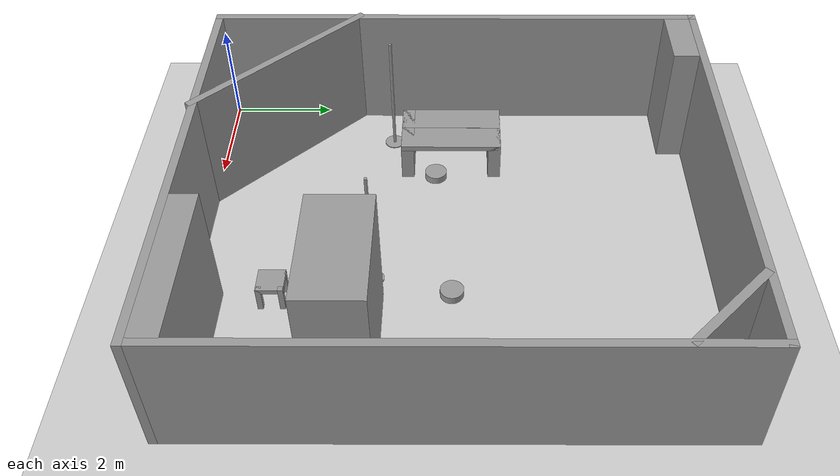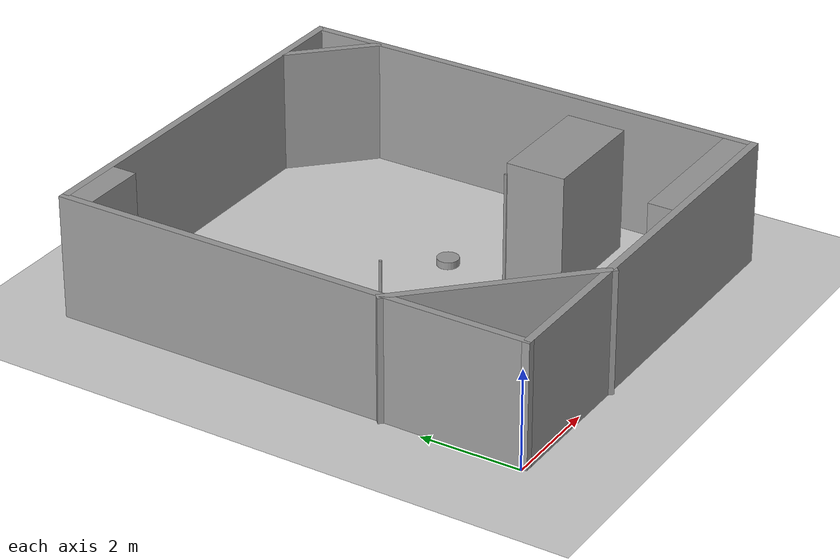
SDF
<sdf version="1.6">
 <world name="default">
  <model name="ground_plane">
   <pose>6.5 0 0 0 -0 0</pose>
   <static>1</static>
   <link name="link">
    <collision name="collision">
     <geometry><plane><normal>0 0 1</normal><size>100 100</size></plane></geometry>
     <surface>
      <contact><collide_bitmask>65535</collide_bitmask></contact>
      <friction><ode><mu>100</mu><mu2>50</mu2></ode></friction>
     </surface>
    </collision>
    <visual name="visual">
     <cast_shadows>0</cast_shadows>
     <geometry><plane><normal>0 0 1</normal><size>100 100</size></plane></geometry>
     <material>
      <script><uri>file://media/materials/scripts/gazebo.material</uri><name>Gazebo/Grey</name></script>
     </material>
    </visual>
   </link>
  </model>
  <model name="Table_SF">
   <link name="link_0">
    <inertial>
     <mass>1</mass>
     <inertia>
      <ixx>0.166667</ixx>
      <ixy>0</ixy>
      <ixz>0</ixz>
      <iyy>0.166667</iyy>
      <iyz>0</iyz>
      <izz>0.166667</izz>
     </inertia>
    </inertial>
    <pose>0 -0.875 -0.116667 0 -0 0</pose>
    <visual name="visual">
     <geometry><box><size>0.6 0.25 0.8</size></box></geometry>
     <material>
      <lighting>1</lighting>
      <script><uri>file://media/materials/scripts/gazebo.material</uri><name>Gazebo/Grey</name></script>
      <shader type="pixel"><normal_map>__default__</normal_map></shader>
      <ambient>0.3 0.3 0.3 1</ambient>
      <diffuse>0.7 0.7 0.7 1</diffuse>
      <specular>0.01 0.01 0.01 1</specular>
      <emissive>0 0 0 1</emissive>
     </material>
    </visual>
    <collision name="collision">
     <geometry><box><size>0.6 0.25 0.8</size></box></geometry>
     <surface>
      <friction>
       <ode><mu>1</mu><mu2>1</mu2><fdir1>0 0 0</fdir1><slip1>0</slip1><slip2>0</slip2></ode>
       <torsional>
        <coefficient>1</coefficient>
        <patch_radius>0</patch_radius>
        <surface_radius>0</surface_radius>
        <use_patch_radius>1</use_patch_radius>
        <ode><slip>0</slip></ode>
       </torsional>
      </friction>
      <bounce><restitution_coefficient>0</restitution_coefficient><threshold>1e+06</threshold></bounce>
      <contact>
       <collide_without_contact>0</collide_without_contact>
       <collide_without_contact_bitmask>1</collide_without_contact_bitmask>
       <collide_bitmask>1</collide_bitmask>
       <ode>
        <soft_cfm>0</soft_cfm>
        <soft_erp>0.2</soft_erp>
        <kp>1e+13</kp>
        <kd>1</kd>
        <max_vel>0.01</max_vel>
        <min_depth>0</min_depth>
       </ode>
       <bullet>
        <split_impulse>1</split_impulse>
        <split_impulse_penetration_threshold>-0.01</split_impulse_penetration_threshold>
        <soft_cfm>0</soft_cfm>
        <soft_erp>0.2</soft_erp>
        <kp>1e+13</kp>
        <kd>1</kd>
       </bullet>
      </contact>
     </surface>
    </collision>
   </link>
   <link name="link_0_clone">
    <inertial>
     <mass>1</mass>
     <inertia>
      <ixx>0.166667</ixx>
      <ixy>0</ixy>
      <ixz>0</ixz>
      <iyy>0.166667</iyy>
      <iyz>0</iyz>
      <izz>0.166667</izz>
     </inertia>
    </inertial>
    <pose>0 0.875 -0.116667 0 -0 0</pose>
    <visual name="visual">
     <geometry><box><size>0.6 0.25 0.8</size></box></geometry>
     <material>
      <lighting>1</lighting>
      <script><uri>file://media/materials/scripts/gazebo.material</uri><name>Gazebo/Grey</name></script>
      <shader type="pixel"><normal_map>__default__</normal_map></shader>
      <ambient>0.3 0.3 0.3 1</ambient>
      <diffuse>0.7 0.7 0.7 1</diffuse>
      <specular>0.01 0.01 0.01 1</specular>
      <emissive>0 0 0 1</emissive>
     </material>
    </visual>
    <collision name="collision">
     <geometry><box><size>0.6 0.25 0.8</size></box></geometry>
     <surface>
      <friction>
       <ode><mu>1</mu><mu2>1</mu2><fdir1>0 0 0</fdir1><slip1>0</slip1><slip2>0</slip2></ode>
       <torsional>
        <coefficient>1</coefficient>
        <patch_radius>0</patch_radius>
        <surface_radius>0</surface_radius>
        <use_patch_radius>1</use_patch_radius>
        <ode><slip>0</slip></ode>
       </torsional>
      </friction>
      <bounce><restitution_coefficient>0</restitution_coefficient><threshold>1e+06</threshold></bounce>
      <contact>
       <collide_without_contact>0</collide_without_contact>
       <collide_without_contact_bitmask>1</collide_without_contact_bitmask>
       <collide_bitmask>1</collide_bitmask>
       <ode>
        <soft_cfm>0</soft_cfm>
        <soft_erp>0.2</soft_erp>
        <kp>1e+13</kp>
        <kd>1</kd>
        <max_vel>0.01</max_vel>
        <min_depth>0</min_depth>
       </ode>
       <bullet>
        <split_impulse>1</split_impulse>
        <split_impulse_penetration_threshold>-0.01</split_impulse_penetration_threshold>
        <soft_cfm>0</soft_cfm>
        <soft_erp>0.2</soft_erp>
        <kp>1e+13</kp>
        <kd>1</kd>
       </bullet>
      </contact>
     </surface>
    </collision>
   </link>
   <link name="link_1">
    <inertial>
     <mass>1</mass>
     <inertia>
      <ixx>0.166667</ixx>
      <ixy>0</ixy>
      <ixz>0</ixz>
      <iyy>0.166667</iyy>
      <iyz>0</iyz>
      <izz>0.166667</izz>
     </inertia>
    </inertial>
    <pose>0 0 0.233333 0 -0 0</pose>
    <visual name="visual">
     <geometry><box><size>0.6 2 0.1</size></box></geometry>
     <material>
      <lighting>1</lighting>
      <script><uri>file://media/materials/scripts/gazebo.material</uri><name>Gazebo/Grey</name></script>
      <shader type="pixel"><normal_map>__default__</normal_map></shader>
      <ambient>0.3 0.3 0.3 1</ambient>
      <diffuse>0.7 0.7 0.7 1</diffuse>
      <specular>0.01 0.01 0.01 1</specular>
      <emissive>0 0 0 1</emissive>
     </material>
    </visual>
    <collision name="collision">
     <geometry><box><size>0.6 2 0.1</size></box></geometry>
     <surface>
      <friction>
       <ode><mu>1</mu><mu2>1</mu2><fdir1>0 0 0</fdir1><slip1>0</slip1><slip2>0</slip2></ode>
       <torsional>
        <coefficient>1</coefficient>
        <patch_radius>0</patch_radius>
        <surface_radius>0</surface_radius>
        <use_patch_radius>1</use_patch_radius>
        <ode><slip>0</slip></ode>
       </torsional>
      </friction>
      <bounce><restitution_coefficient>0</restitution_coefficient><threshold>1e+06</threshold></bounce>
      <contact>
       <collide_without_contact>0</collide_without_contact>
       <collide_without_contact_bitmask>1</collide_without_contact_bitmask>
       <collide_bitmask>1</collide_bitmask>
       <ode>
        <soft_cfm>0</soft_cfm>
        <soft_erp>0.2</soft_erp>
        <kp>1e+13</kp>
        <kd>1</kd>
        <max_vel>0.01</max_vel>
        <min_depth>0</min_depth>
       </ode>
       <bullet>
        <split_impulse>1</split_impulse>
        <split_impulse_penetration_threshold>-0.01</split_impulse_penetration_threshold>
        <soft_cfm>0</soft_cfm>
        <soft_erp>0.2</soft_erp>
        <kp>1e+13</kp>
        <kd>1</kd>
       </bullet>
      </contact>
     </surface>
    </collision>
   </link>
   <joint name="link_0_JOINT_0" type="fixed">
    <parent>link_0</parent>
    <child>link_1</child>
    <physics>
     <ode><limit><cfm>0</cfm><erp>0.2</erp></limit><suspension><cfm>0</cfm><erp>0.2</erp></suspension></ode>
    </physics>
   </joint>
   <joint name="link_0_clone_JOINT_1" type="fixed">
    <parent>link_0_clone</parent>
    <child>link_1</child>
    <physics>
     <ode><limit><cfm>0</cfm><erp>0.2</erp></limit><suspension><cfm>0</cfm><erp>0.2</erp></suspension></ode>
    </physics>
   </joint>
   <static>0</static>
   <pose>1.29995 4.69731 0.516667 0 0 -3e-06</pose>
  </model>
  <model name="Factory_room">
   <pose>4.25 4.75 0 0 -0 0</pose>
   <link name="Wall_2">
    <collision name="Wall_2_Collision">
     <geometry><box><size>8.5 0.15 2.5</size></box></geometry>
     <pose>0 0 1.25 0 -0 0</pose>
    </collision>
    <visual name="Wall_2_Visual">
     <pose>0 0 1.25 0 -0 0</pose>
     <geometry><box><size>8.5 0.15 2.5</size></box></geometry>
     <material>
      <script><uri>file://media/materials/scripts/gazebo.material</uri><name>Gazebo/Grey</name></script>
      <ambient>1 1 1 1</ambient>
     </material>
     <meta><layer>0</layer></meta>
    </visual>
    <pose>0.038385 4.83866 0 0 -0 0</pose>
   </link>
   <link name="Wall_22">
    <collision name="Wall_22_Collision">
     <geometry><box><size>4.25 0.15 2.5</size></box></geometry>
     <pose>0 0 1.25 0 -0 0</pose>
    </collision>
    <visual name="Wall_22_Visual">
     <pose>0 0 1.25 0 -0 0</pose>
     <geometry><box><size>4.25 0.15 2.5</size></box></geometry>
     <material>
      <script><uri>file://media/materials/scripts/gazebo.material</uri><name>Gazebo/Grey</name></script>
      <ambient>1 1 1 1</ambient>
     </material>
     <meta><layer>0</layer></meta>
    </visual>
    <pose>-2.73275 -3.35803 0 0 -0 -0.785398</pose>
   </link>
   <link name="Wall_24">
    <collision name="Wall_24_Collision">
     <geometry><box><size>3 0.5 2.5</size></box></geometry>
     <pose>0 0 1.25 0 -0 0</pose>
    </collision>
    <visual name="Wall_24_Visual">
     <pose>0 0 1.25 0 -0 0</pose>
     <geometry><box><size>3 0.5 2.5</size></box></geometry>
     <material>
      <script><uri>file://media/materials/scripts/gazebo.material</uri><name>Gazebo/Grey</name></script>
      <ambient>1 1 1 1</ambient>
     </material>
     <meta><layer>0</layer></meta>
    </visual>
    <pose>2.64353 -4.43684 0 0 -0 0</pose>
   </link>
   <link name="Wall_26">
    <collision name="Wall_26_Collision">
     <geometry><box><size>2.3 1.2 2.5</size></box></geometry>
     <pose>0 0 1.25 0 -0 0</pose>
    </collision>
    <visual name="Wall_26_Visual">
     <pose>0 0 1.25 0 -0 0</pose>
     <geometry><box><size>2.3 1.2 2.5</size></box></geometry>
     <material>
      <script><uri>file://media/materials/scripts/gazebo.material</uri><name>Gazebo/Grey</name></script>
      <ambient>1 1 1 1</ambient>
     </material>
     <meta><layer>0</layer></meta>
    </visual>
    <pose>2.29544 -1.86664 0 0 -0 3.14159</pose>
   </link>
   <link name="Wall_3">
    <collision name="Wall_3_Collision">
     <geometry><box><size>9.75 0.15 2.5</size></box></geometry>
     <pose>0 0 1.25 0 -0 0</pose>
    </collision>
    <visual name="Wall_3_Visual">
     <pose>0 0 1.25 0 -0 0</pose>
     <geometry><box><size>9.75 0.15 2.5</size></box></geometry>
     <material>
      <script><uri>file://media/materials/scripts/gazebo.material</uri><name>Gazebo/Grey</name></script>
      <ambient>1 1 1 1</ambient>
     </material>
     <meta><layer>0</layer></meta>
    </visual>
    <pose>4.21338 0.038663 0 0 -0 -1.5708</pose>
   </link>
   <link name="Wall_4">
    <collision name="Wall_4_Collision">
     <geometry><box><size>8.5 0.15 2.5</size></box></geometry>
     <pose>0 0 1.25 0 -0 0</pose>
    </collision>
    <visual name="Wall_4_Visual">
     <pose>0 0 1.25 0 -0 0</pose>
     <geometry><box><size>8.5 0.15 2.5</size></box></geometry>
     <material>
      <script><uri>file://media/materials/scripts/gazebo.material</uri><name>Gazebo/Grey</name></script>
      <ambient>1 1 1 1</ambient>
     </material>
     <meta><layer>0</layer></meta>
    </visual>
    <pose>0.038385 -4.76134 0 0 -0 3.14159</pose>
   </link>
   <link name="Wall_5">
    <collision name="Wall_5_Collision">
     <geometry><box><size>9.75 0.15 2.5</size></box></geometry>
     <pose>0 0 1.25 0 -0 0</pose>
    </collision>
    <visual name="Wall_5_Visual">
     <pose>0 0 1.25 0 -0 0</pose>
     <geometry><box><size>9.75 0.15 2.5</size></box></geometry>
     <material>
      <script><uri>file://media/materials/scripts/gazebo.material</uri><name>Gazebo/Grey</name></script>
      <ambient>1 1 1 1</ambient>
     </material>
     <meta><layer>0</layer></meta>
    </visual>
    <pose>-4.13661 0.038663 0 0 -0 1.5708</pose>
   </link>
   <link name="Wall_7">
    <collision name="Wall_7_Collision">
     <geometry><box><size>1.3 0.5 2.5</size></box></geometry>
     <pose>0 0 1.25 0 -0 0</pose>
    </collision>
    <visual name="Wall_7_Visual">
     <pose>0 0 1.25 0 -0 0</pose>
     <geometry><box><size>1.3 0.5 2.5</size></box></geometry>
     <material>
      <script><uri>file://media/materials/scripts/gazebo.material</uri><name>Gazebo/Grey</name></script>
      <ambient>1 1 1 1</ambient>
     </material>
     <meta><layer>0</layer></meta>
    </visual>
    <pose>-3.4172 4.51675 0 0 -0 3.14159</pose>
   </link>
   <link name="Wall_9">
    <collision name="Wall_9_Collision">
     <geometry><box><size>2 0.15 2.5</size></box></geometry>
     <pose>0 0 1.25 0 -0 0</pose>
    </collision>
    <visual name="Wall_9_Visual">
     <pose>0 0 1.25 0 -0 0</pose>
     <geometry><box><size>2 0.15 2.5</size></box></geometry>
     <material>
      <script><uri>file://media/materials/scripts/gazebo.material</uri><name>Gazebo/Grey</name></script>
      <ambient>1 1 1 1</ambient>
     </material>
     <meta><layer>0</layer></meta>
    </visual>
    <pose>3.51931 4.12517 0 0 -0 2.35619</pose>
   </link>
   <static>1</static>
  </model>
  <model name="Table_SF_clone">
   <link name="link_0">
    <inertial>
     <mass>1</mass>
     <inertia>
      <ixx>0.166667</ixx>
      <ixy>0</ixy>
      <ixz>0</ixz>
      <iyy>0.166667</iyy>
      <iyz>0</iyz>
      <izz>0.166667</izz>
     </inertia>
    </inertial>
    <pose>0 -0.875 -0.116667 0 -0 0</pose>
    <visual name="visual">
     <geometry><box><size>0.6 0.25 0.8</size></box></geometry>
     <material>
      <lighting>1</lighting>
      <script><uri>file://media/materials/scripts/gazebo.material</uri><name>Gazebo/Grey</name></script>
      <shader type="pixel"><normal_map>__default__</normal_map></shader>
      <ambient>0.3 0.3 0.3 1</ambient>
      <diffuse>0.7 0.7 0.7 1</diffuse>
      <specular>0.01 0.01 0.01 1</specular>
      <emissive>0 0 0 1</emissive>
     </material>
    </visual>
    <collision name="collision">
     <geometry><box><size>0.6 0.25 0.8</size></box></geometry>
     <surface>
      <friction>
       <ode><mu>1</mu><mu2>1</mu2><fdir1>0 0 0</fdir1><slip1>0</slip1><slip2>0</slip2></ode>
       <torsional>
        <coefficient>1</coefficient>
        <patch_radius>0</patch_radius>
        <surface_radius>0</surface_radius>
        <use_patch_radius>1</use_patch_radius>
        <ode><slip>0</slip></ode>
       </torsional>
      </friction>
      <bounce><restitution_coefficient>0</restitution_coefficient><threshold>1e+06</threshold></bounce>
      <contact>
       <collide_without_contact>0</collide_without_contact>
       <collide_without_contact_bitmask>1</collide_without_contact_bitmask>
       <collide_bitmask>1</collide_bitmask>
       <ode>
        <soft_cfm>0</soft_cfm>
        <soft_erp>0.2</soft_erp>
        <kp>1e+13</kp>
        <kd>1</kd>
        <max_vel>0.01</max_vel>
        <min_depth>0</min_depth>
       </ode>
       <bullet>
        <split_impulse>1</split_impulse>
        <split_impulse_penetration_threshold>-0.01</split_impulse_penetration_threshold>
        <soft_cfm>0</soft_cfm>
        <soft_erp>0.2</soft_erp>
        <kp>1e+13</kp>
        <kd>1</kd>
       </bullet>
      </contact>
     </surface>
    </collision>
   </link>
   <link name="link_0_clone">
    <inertial>
     <mass>1</mass>
     <inertia>
      <ixx>0.166667</ixx>
      <ixy>0</ixy>
      <ixz>0</ixz>
      <iyy>0.166667</iyy>
      <iyz>0</iyz>
      <izz>0.166667</izz>
     </inertia>
    </inertial>
    <pose>0 0.875 -0.116667 0 -0 0</pose>
    <visual name="visual">
     <geometry><box><size>0.6 0.25 0.8</size></box></geometry>
     <material>
      <lighting>1</lighting>
      <script><uri>file://media/materials/scripts/gazebo.material</uri><name>Gazebo/Grey</name></script>
      <shader type="pixel"><normal_map>__default__</normal_map></shader>
      <ambient>0.3 0.3 0.3 1</ambient>
      <diffuse>0.7 0.7 0.7 1</diffuse>
      <specular>0.01 0.01 0.01 1</specular>
      <emissive>0 0 0 1</emissive>
     </material>
    </visual>
    <collision name="collision">
     <geometry><box><size>0.6 0.25 0.8</size></box></geometry>
     <surface>
      <friction>
       <ode><mu>1</mu><mu2>1</mu2><fdir1>0 0 0</fdir1><slip1>0</slip1><slip2>0</slip2></ode>
       <torsional>
        <coefficient>1</coefficient>
        <patch_radius>0</patch_radius>
        <surface_radius>0</surface_radius>
        <use_patch_radius>1</use_patch_radius>
        <ode><slip>0</slip></ode>
       </torsional>
      </friction>
      <bounce><restitution_coefficient>0</restitution_coefficient><threshold>1e+06</threshold></bounce>
      <contact>
       <collide_without_contact>0</collide_without_contact>
       <collide_without_contact_bitmask>1</collide_without_contact_bitmask>
       <collide_bitmask>1</collide_bitmask>
       <ode>
        <soft_cfm>0</soft_cfm>
        <soft_erp>0.2</soft_erp>
        <kp>1e+13</kp>
        <kd>1</kd>
        <max_vel>0.01</max_vel>
        <min_depth>0</min_depth>
       </ode>
       <bullet>
        <split_impulse>1</split_impulse>
        <split_impulse_penetration_threshold>-0.01</split_impulse_penetration_threshold>
        <soft_cfm>0</soft_cfm>
        <soft_erp>0.2</soft_erp>
        <kp>1e+13</kp>
        <kd>1</kd>
       </bullet>
      </contact>
     </surface>
    </collision>
   </link>
   <link name="link_1">
    <inertial>
     <mass>1</mass>
     <inertia>
      <ixx>0.166667</ixx>
      <ixy>0</ixy>
      <ixz>0</ixz>
      <iyy>0.166667</iyy>
      <iyz>0</iyz>
      <izz>0.166667</izz>
     </inertia>
    </inertial>
    <pose>0 0 0.233333 0 -0 0</pose>
    <visual name="visual">
     <geometry><box><size>0.6 2 0.1</size></box></geometry>
     <material>
      <lighting>1</lighting>
      <script><uri>file://media/materials/scripts/gazebo.material</uri><name>Gazebo/Grey</name></script>
      <shader type="pixel"><normal_map>__default__</normal_map></shader>
      <ambient>0.3 0.3 0.3 1</ambient>
      <diffuse>0.7 0.7 0.7 1</diffuse>
      <specular>0.01 0.01 0.01 1</specular>
      <emissive>0 0 0 1</emissive>
     </material>
    </visual>
    <collision name="collision">
     <geometry><box><size>0.6 2 0.1</size></box></geometry>
     <surface>
      <friction>
       <ode><mu>1</mu><mu2>1</mu2><fdir1>0 0 0</fdir1><slip1>0</slip1><slip2>0</slip2></ode>
       <torsional>
        <coefficient>1</coefficient>
        <patch_radius>0</patch_radius>
        <surface_radius>0</surface_radius>
        <use_patch_radius>1</use_patch_radius>
        <ode><slip>0</slip></ode>
       </torsional>
      </friction>
      <bounce><restitution_coefficient>0</restitution_coefficient><threshold>1e+06</threshold></bounce>
      <contact>
       <collide_without_contact>0</collide_without_contact>
       <collide_without_contact_bitmask>1</collide_without_contact_bitmask>
       <collide_bitmask>1</collide_bitmask>
       <ode>
        <soft_cfm>0</soft_cfm>
        <soft_erp>0.2</soft_erp>
        <kp>1e+13</kp>
        <kd>1</kd>
        <max_vel>0.01</max_vel>
        <min_depth>0</min_depth>
       </ode>
       <bullet>
        <split_impulse>1</split_impulse>
        <split_impulse_penetration_threshold>-0.01</split_impulse_penetration_threshold>
        <soft_cfm>0</soft_cfm>
        <soft_erp>0.2</soft_erp>
        <kp>1e+13</kp>
        <kd>1</kd>
       </bullet>
      </contact>
     </surface>
    </collision>
   </link>
   <joint name="link_0_JOINT_0" type="fixed">
    <parent>link_0</parent>
    <child>link_1</child>
    <physics>
     <ode><limit><cfm>0</cfm><erp>0.2</erp></limit><suspension><cfm>0</cfm><erp>0.2</erp></suspension></ode>
    </physics>
   </joint>
   <joint name="link_0_clone_JOINT_1" type="fixed">
    <parent>link_0_clone</parent>
    <child>link_1</child>
    <physics>
     <ode><limit><cfm>0</cfm><erp>0.2</erp></limit><suspension><cfm>0</cfm><erp>0.2</erp></suspension></ode>
    </physics>
   </joint>
   <static>0</static>
   <pose>1.90049 4.69695 0.516672 5e-06 -0 -0.000542</pose>
  </model>
  <model name="little_table_SF">
   <link name="link_0">
    <inertial>
     <mass>1</mass>
     <inertia>
      <ixx>0.166667</ixx>
      <ixy>0</ixy>
      <ixz>0</ixz>
      <iyy>0.166667</iyy>
      <iyz>0</iyz>
      <izz>0.166667</izz>
     </inertia>
    </inertial>
    <pose>-0.2 -0.2 -0.04 0 -0 0</pose>
    <visual name="visual">
     <geometry><box><size>0.1 0.1 0.5</size></box></geometry>
     <material>
      <lighting>1</lighting>
      <script><uri>file://media/materials/scripts/gazebo.material</uri><name>Gazebo/Grey</name></script>
      <shader type="pixel"><normal_map>__default__</normal_map></shader>
      <ambient>0.3 0.3 0.3 1</ambient>
      <diffuse>0.7 0.7 0.7 1</diffuse>
      <specular>0.01 0.01 0.01 1</specular>
      <emissive>0 0 0 1</emissive>
     </material>
    </visual>
    <collision name="collision">
     <geometry><box><size>0.1 0.1 0.5</size></box></geometry>
     <surface>
      <friction>
       <ode><mu>1</mu><mu2>1</mu2><fdir1>0 0 0</fdir1><slip1>0</slip1><slip2>0</slip2></ode>
       <torsional>
        <coefficient>1</coefficient>
        <patch_radius>0</patch_radius>
        <surface_radius>0</surface_radius>
        <use_patch_radius>1</use_patch_radius>
        <ode><slip>0</slip></ode>
       </torsional>
      </friction>
      <bounce><restitution_coefficient>0</restitution_coefficient><threshold>1e+06</threshold></bounce>
      <contact>
       <collide_without_contact>0</collide_without_contact>
       <collide_without_contact_bitmask>1</collide_without_contact_bitmask>
       <collide_bitmask>1</collide_bitmask>
       <ode>
        <soft_cfm>0</soft_cfm>
        <soft_erp>0.2</soft_erp>
        <kp>1e+13</kp>
        <kd>1</kd>
        <max_vel>0.01</max_vel>
        <min_depth>0</min_depth>
       </ode>
       <bullet>
        <split_impulse>1</split_impulse>
        <split_impulse_penetration_threshold>-0.01</split_impulse_penetration_threshold>
        <soft_cfm>0</soft_cfm>
        <soft_erp>0.2</soft_erp>
        <kp>1e+13</kp>
        <kd>1</kd>
       </bullet>
      </contact>
     </surface>
    </collision>
   </link>
   <link name="link_0_clone">
    <inertial>
     <mass>1</mass>
     <inertia>
      <ixx>0.166667</ixx>
      <ixy>0</ixy>
      <ixz>0</ixz>
      <iyy>0.166667</iyy>
      <iyz>0</iyz>
      <izz>0.166667</izz>
     </inertia>
    </inertial>
    <pose>0.2 -0.2 -0.04 0 -0 0</pose>
    <visual name="visual">
     <geometry><box><size>0.1 0.1 0.5</size></box></geometry>
     <material>
      <lighting>1</lighting>
      <script><uri>file://media/materials/scripts/gazebo.material</uri><name>Gazebo/Grey</name></script>
      <shader type="pixel"><normal_map>__default__</normal_map></shader>
      <ambient>0.3 0.3 0.3 1</ambient>
      <diffuse>0.7 0.7 0.7 1</diffuse>
      <specular>0.01 0.01 0.01 1</specular>
      <emissive>0 0 0 1</emissive>
     </material>
    </visual>
    <collision name="collision">
     <geometry><box><size>0.1 0.1 0.5</size></box></geometry>
     <surface>
      <friction>
       <ode><mu>1</mu><mu2>1</mu2><fdir1>0 0 0</fdir1><slip1>0</slip1><slip2>0</slip2></ode>
       <torsional>
        <coefficient>1</coefficient>
        <patch_radius>0</patch_radius>
        <surface_radius>0</surface_radius>
        <use_patch_radius>1</use_patch_radius>
        <ode><slip>0</slip></ode>
       </torsional>
      </friction>
      <bounce><restitution_coefficient>0</restitution_coefficient><threshold>1e+06</threshold></bounce>
      <contact>
       <collide_without_contact>0</collide_without_contact>
       <collide_without_contact_bitmask>1</collide_without_contact_bitmask>
       <collide_bitmask>1</collide_bitmask>
       <ode>
        <soft_cfm>0</soft_cfm>
        <soft_erp>0.2</soft_erp>
        <kp>1e+13</kp>
        <kd>1</kd>
        <max_vel>0.01</max_vel>
        <min_depth>0</min_depth>
       </ode>
       <bullet>
        <split_impulse>1</split_impulse>
        <split_impulse_penetration_threshold>-0.01</split_impulse_penetration_threshold>
        <soft_cfm>0</soft_cfm>
        <soft_erp>0.2</soft_erp>
        <kp>1e+13</kp>
        <kd>1</kd>
       </bullet>
      </contact>
     </surface>
    </collision>
   </link>
   <link name="link_0_clone_0">
    <inertial>
     <mass>1</mass>
     <inertia>
      <ixx>0.166667</ixx>
      <ixy>0</ixy>
      <ixz>0</ixz>
      <iyy>0.166667</iyy>
      <iyz>0</iyz>
      <izz>0.166667</izz>
     </inertia>
    </inertial>
    <pose>-0.2 0.2 -0.04 0 -0 0</pose>
    <visual name="visual">
     <geometry><box><size>0.1 0.1 0.5</size></box></geometry>
     <material>
      <lighting>1</lighting>
      <script><uri>file://media/materials/scripts/gazebo.material</uri><name>Gazebo/Grey</name></script>
      <shader type="pixel"><normal_map>__default__</normal_map></shader>
      <ambient>0.3 0.3 0.3 1</ambient>
      <diffuse>0.7 0.7 0.7 1</diffuse>
      <specular>0.01 0.01 0.01 1</specular>
      <emissive>0 0 0 1</emissive>
     </material>
    </visual>
    <collision name="collision">
     <geometry><box><size>0.1 0.1 0.5</size></box></geometry>
     <surface>
      <friction>
       <ode><mu>1</mu><mu2>1</mu2><fdir1>0 0 0</fdir1><slip1>0</slip1><slip2>0</slip2></ode>
       <torsional>
        <coefficient>1</coefficient>
        <patch_radius>0</patch_radius>
        <surface_radius>0</surface_radius>
        <use_patch_radius>1</use_patch_radius>
        <ode><slip>0</slip></ode>
       </torsional>
      </friction>
      <bounce><restitution_coefficient>0</restitution_coefficient><threshold>1e+06</threshold></bounce>
      <contact>
       <collide_without_contact>0</collide_without_contact>
       <collide_without_contact_bitmask>1</collide_without_contact_bitmask>
       <collide_bitmask>1</collide_bitmask>
       <ode>
        <soft_cfm>0</soft_cfm>
        <soft_erp>0.2</soft_erp>
        <kp>1e+13</kp>
        <kd>1</kd>
        <max_vel>0.01</max_vel>
        <min_depth>0</min_depth>
       </ode>
       <bullet>
        <split_impulse>1</split_impulse>
        <split_impulse_penetration_threshold>-0.01</split_impulse_penetration_threshold>
        <soft_cfm>0</soft_cfm>
        <soft_erp>0.2</soft_erp>
        <kp>1e+13</kp>
        <kd>1</kd>
       </bullet>
      </contact>
     </surface>
    </collision>
   </link>
   <link name="link_0_clone_1">
    <inertial>
     <mass>1</mass>
     <inertia>
      <ixx>0.166667</ixx>
      <ixy>0</ixy>
      <ixz>0</ixz>
      <iyy>0.166667</iyy>
      <iyz>0</iyz>
      <izz>0.166667</izz>
     </inertia>
    </inertial>
    <pose>0.2 0.2 -0.04 0 -0 0</pose>
    <visual name="visual">
     <geometry><box><size>0.1 0.1 0.5</size></box></geometry>
     <material>
      <lighting>1</lighting>
      <script><uri>file://media/materials/scripts/gazebo.material</uri><name>Gazebo/Grey</name></script>
      <shader type="pixel"><normal_map>__default__</normal_map></shader>
      <ambient>0.3 0.3 0.3 1</ambient>
      <diffuse>0.7 0.7 0.7 1</diffuse>
      <specular>0.01 0.01 0.01 1</specular>
      <emissive>0 0 0 1</emissive>
     </material>
    </visual>
    <collision name="collision">
     <geometry><box><size>0.1 0.1 0.5</size></box></geometry>
     <surface>
      <friction>
       <ode><mu>1</mu><mu2>1</mu2><fdir1>0 0 0</fdir1><slip1>0</slip1><slip2>0</slip2></ode>
       <torsional>
        <coefficient>1</coefficient>
        <patch_radius>0</patch_radius>
        <surface_radius>0</surface_radius>
        <use_patch_radius>1</use_patch_radius>
        <ode><slip>0</slip></ode>
       </torsional>
      </friction>
      <bounce><restitution_coefficient>0</restitution_coefficient><threshold>1e+06</threshold></bounce>
      <contact>
       <collide_without_contact>0</collide_without_contact>
       <collide_without_contact_bitmask>1</collide_without_contact_bitmask>
       <collide_bitmask>1</collide_bitmask>
       <ode>
        <soft_cfm>0</soft_cfm>
        <soft_erp>0.2</soft_erp>
        <kp>1e+13</kp>
        <kd>1</kd>
        <max_vel>0.01</max_vel>
        <min_depth>0</min_depth>
       </ode>
       <bullet>
        <split_impulse>1</split_impulse>
        <split_impulse_penetration_threshold>-0.01</split_impulse_penetration_threshold>
        <soft_cfm>0</soft_cfm>
        <soft_erp>0.2</soft_erp>
        <kp>1e+13</kp>
        <kd>1</kd>
       </bullet>
      </contact>
     </surface>
    </collision>
   </link>
   <link name="link_1">
    <inertial>
     <mass>1</mass>
     <inertia>
      <ixx>0.166667</ixx>
      <ixy>0</ixy>
      <ixz>0</ixz>
      <iyy>0.166667</iyy>
      <iyz>0</iyz>
      <izz>0.166667</izz>
     </inertia>
    </inertial>
    <pose>0 0 0.16 0 -0 0</pose>
    <visual name="visual">
     <geometry><box><size>0.5 0.5 0.1</size></box></geometry>
     <material>
      <lighting>1</lighting>
      <script><uri>file://media/materials/scripts/gazebo.material</uri><name>Gazebo/Grey</name></script>
      <shader type="pixel"><normal_map>__default__</normal_map></shader>
      <ambient>0.3 0.3 0.3 1</ambient>
      <diffuse>0.7 0.7 0.7 1</diffuse>
      <specular>0.01 0.01 0.01 1</specular>
      <emissive>0 0 0 1</emissive>
     </material>
    </visual>
    <collision name="collision">
     <geometry><box><size>0.5 0.5 0.1</size></box></geometry>
     <surface>
      <friction>
       <ode><mu>1</mu><mu2>1</mu2><fdir1>0 0 0</fdir1><slip1>0</slip1><slip2>0</slip2></ode>
       <torsional>
        <coefficient>1</coefficient>
        <patch_radius>0</patch_radius>
        <surface_radius>0</surface_radius>
        <use_patch_radius>1</use_patch_radius>
        <ode><slip>0</slip></ode>
       </torsional>
      </friction>
      <bounce><restitution_coefficient>0</restitution_coefficient><threshold>1e+06</threshold></bounce>
      <contact>
       <collide_without_contact>0</collide_without_contact>
       <collide_without_contact_bitmask>1</collide_without_contact_bitmask>
       <collide_bitmask>1</collide_bitmask>
       <ode>
        <soft_cfm>0</soft_cfm>
        <soft_erp>0.2</soft_erp>
        <kp>1e+13</kp>
        <kd>1</kd>
        <max_vel>0.01</max_vel>
        <min_depth>0</min_depth>
       </ode>
       <bullet>
        <split_impulse>1</split_impulse>
        <split_impulse_penetration_threshold>-0.01</split_impulse_penetration_threshold>
        <soft_cfm>0</soft_cfm>
        <soft_erp>0.2</soft_erp>
        <kp>1e+13</kp>
        <kd>1</kd>
       </bullet>
      </contact>
     </surface>
    </collision>
   </link>
   <joint name="link_1_JOINT_0" type="fixed">
    <parent>link_1</parent>
    <child>link_0_clone_0</child>
    <physics>
     <ode><limit><cfm>0</cfm><erp>0.2</erp></limit><suspension><cfm>0</cfm><erp>0.2</erp></suspension></ode>
    </physics>
   </joint>
   <joint name="link_1_JOINT_1" type="fixed">
    <parent>link_1</parent>
    <child>link_0</child>
    <physics>
     <ode><limit><cfm>0</cfm><erp>0.2</erp></limit><suspension><cfm>0</cfm><erp>0.2</erp></suspension></ode>
    </physics>
   </joint>
   <joint name="link_1_JOINT_2" type="fixed">
    <parent>link_1</parent>
    <child>link_0_clone_1</child>
    <physics>
     <ode><limit><cfm>0</cfm><erp>0.2</erp></limit><suspension><cfm>0</cfm><erp>0.2</erp></suspension></ode>
    </physics>
   </joint>
   <joint name="link_1_JOINT_3" type="fixed">
    <parent>link_1</parent>
    <child>link_0_clone</child>
    <physics>
     <ode><limit><cfm>0</cfm><erp>0.2</erp></limit><suspension><cfm>0</cfm><erp>0.2</erp></suspension></ode>
    </physics>
   </joint>
   <static>0</static>
   <pose>5.49895 1.49961 0.29 2e-06 2e-06 7e-06</pose>
  </model>
  <model name="Pillar_SF_clone">
   <link name="link_0">
    <inertial>
     <mass>1</mass>
     <inertia><ixx>0.145833</ixx><ixy>0</ixy><ixz>0</ixz><iyy>0.145833</iyy><iyz>0</iyz><izz>0.125</izz></inertia>
    </inertial>
    <pose>0 0 0.01 0 -0 0</pose>
    <visual name="visual">
     <geometry><cylinder><radius>0.2</radius><length>0.02</length></cylinder></geometry>
     <material>
      <lighting>1</lighting>
      <script><uri>file://media/materials/scripts/gazebo.material</uri><name>Gazebo/Grey</name></script>
      <shader type="pixel"><normal_map>__default__</normal_map></shader>
      <ambient>0.3 0.3 0.3 1</ambient>
      <diffuse>0.7 0.7 0.7 1</diffuse>
      <specular>0.01 0.01 0.01 1</specular>
      <emissive>0 0 0 1</emissive>
     </material>
    </visual>
    <collision name="collision">
     <geometry><cylinder><radius>0.2</radius><length>0.02</length></cylinder></geometry>
     <surface>
      <friction>
       <ode><mu>1</mu><mu2>1</mu2><fdir1>0 0 0</fdir1><slip1>0</slip1><slip2>0</slip2></ode>
       <torsional>
        <coefficient>1</coefficient>
        <patch_radius>0</patch_radius>
        <surface_radius>0</surface_radius>
        <use_patch_radius>1</use_patch_radius>
        <ode><slip>0</slip></ode>
       </torsional>
      </friction>
      <bounce><restitution_coefficient>0</restitution_coefficient><threshold>1e+06</threshold></bounce>
      <contact>
       <collide_without_contact>0</collide_without_contact>
       <collide_without_contact_bitmask>1</collide_without_contact_bitmask>
       <collide_bitmask>1</collide_bitmask>
       <ode>
        <soft_cfm>0</soft_cfm>
        <soft_erp>0.2</soft_erp>
        <kp>1e+13</kp>
        <kd>1</kd>
        <max_vel>0.01</max_vel>
        <min_depth>0</min_depth>
       </ode>
       <bullet>
        <split_impulse>1</split_impulse>
        <split_impulse_penetration_threshold>-0.01</split_impulse_penetration_threshold>
        <soft_cfm>0</soft_cfm>
        <soft_erp>0.2</soft_erp>
        <kp>1e+13</kp>
        <kd>1</kd>
       </bullet>
      </contact>
     </surface>
    </collision>
   </link>
   <link name="link_1">
    <inertial>
     <mass>1</mass>
     <inertia><ixx>0.145833</ixx><ixy>0</ixy><ixz>0</ixz><iyy>0.145833</iyy><iyz>0</iyz><izz>0.125</izz></inertia>
    </inertial>
    <pose>0 0 1.25 0 -0 0</pose>
    <gravity>0</gravity>
    <visual name="visual">
     <geometry><cylinder><radius>0.03</radius><length>2.5</length></cylinder></geometry>
     <material>
      <lighting>1</lighting>
      <script><uri>file://media/materials/scripts/gazebo.material</uri><name>Gazebo/Grey</name></script>
      <shader type="pixel"><normal_map>__default__</normal_map></shader>
      <ambient>0.3 0.3 0.3 1</ambient>
      <diffuse>0.7 0.7 0.7 1</diffuse>
      <specular>0.01 0.01 0.01 1</specular>
      <emissive>0 0 0 1</emissive>
     </material>
    </visual>
    <collision name="collision">
     <geometry><cylinder><radius>0.03</radius><length>2.5</length></cylinder></geometry>
     <surface>
      <friction>
       <ode><mu>1</mu><mu2>1</mu2><fdir1>0 0 0</fdir1><slip1>0</slip1><slip2>0</slip2></ode>
       <torsional>
        <coefficient>1</coefficient>
        <patch_radius>0</patch_radius>
        <surface_radius>0</surface_radius>
        <use_patch_radius>1</use_patch_radius>
        <ode><slip>0</slip></ode>
       </torsional>
      </friction>
      <bounce><restitution_coefficient>0</restitution_coefficient><threshold>1e+06</threshold></bounce>
      <contact>
       <collide_without_contact>0</collide_without_contact>
       <collide_without_contact_bitmask>1</collide_without_contact_bitmask>
       <collide_bitmask>1</collide_bitmask>
       <ode>
        <soft_cfm>0</soft_cfm>
        <soft_erp>0.2</soft_erp>
        <kp>1e+13</kp>
        <kd>1</kd>
        <max_vel>0.01</max_vel>
        <min_depth>0</min_depth>
       </ode>
       <bullet>
        <split_impulse>1</split_impulse>
        <split_impulse_penetration_threshold>-0.01</split_impulse_penetration_threshold>
        <soft_cfm>0</soft_cfm>
        <soft_erp>0.2</soft_erp>
        <kp>1e+13</kp>
        <kd>1</kd>
       </bullet>
      </contact>
     </surface>
    </collision>
   </link>
   <joint name="link_0_JOINT_0" type="fixed">
    <parent>link_0</parent>
    <child>link_1</child>
    <physics>
     <ode><limit><cfm>0</cfm><erp>0.2</erp></limit><suspension><cfm>0</cfm><erp>0.2</erp></suspension></ode>
    </physics>
   </joint>
   <static>0</static>
   <pose>1.10081 3.4973 -2e-06 0 0 -0.013066</pose>
  </model>
  <model name="Pillar_SF_clone_0_clone">
   <link name="link_0">
    <inertial>
     <mass>1</mass>
     <inertia><ixx>0.145833</ixx><ixy>0</ixy><ixz>0</ixz><iyy>0.145833</iyy><iyz>0</iyz><izz>0.125</izz></inertia>
    </inertial>
    <pose>0 0 0.01 0 -0 0</pose>
    <visual name="visual">
     <geometry><cylinder><radius>0.2</radius><length>0.02</length></cylinder></geometry>
     <material>
      <lighting>1</lighting>
      <script><uri>file://media/materials/scripts/gazebo.material</uri><name>Gazebo/Grey</name></script>
      <shader type="pixel"><normal_map>__default__</normal_map></shader>
      <ambient>0.3 0.3 0.3 1</ambient>
      <diffuse>0.7 0.7 0.7 1</diffuse>
      <specular>0.01 0.01 0.01 1</specular>
      <emissive>0 0 0 1</emissive>
     </material>
    </visual>
    <collision name="collision">
     <geometry><cylinder><radius>0.2</radius><length>0.02</length></cylinder></geometry>
     <surface>
      <friction>
       <ode><mu>1</mu><mu2>1</mu2><fdir1>0 0 0</fdir1><slip1>0</slip1><slip2>0</slip2></ode>
       <torsional>
        <coefficient>1</coefficient>
        <patch_radius>0</patch_radius>
        <surface_radius>0</surface_radius>
        <use_patch_radius>1</use_patch_radius>
        <ode><slip>0</slip></ode>
       </torsional>
      </friction>
      <bounce><restitution_coefficient>0</restitution_coefficient><threshold>1e+06</threshold></bounce>
      <contact>
       <collide_without_contact>0</collide_without_contact>
       <collide_without_contact_bitmask>1</collide_without_contact_bitmask>
       <collide_bitmask>1</collide_bitmask>
       <ode>
        <soft_cfm>0</soft_cfm>
        <soft_erp>0.2</soft_erp>
        <kp>1e+13</kp>
        <kd>1</kd>
        <max_vel>0.01</max_vel>
        <min_depth>0</min_depth>
       </ode>
       <bullet>
        <split_impulse>1</split_impulse>
        <split_impulse_penetration_threshold>-0.01</split_impulse_penetration_threshold>
        <soft_cfm>0</soft_cfm>
        <soft_erp>0.2</soft_erp>
        <kp>1e+13</kp>
        <kd>1</kd>
       </bullet>
      </contact>
     </surface>
    </collision>
   </link>
   <link name="link_1">
    <inertial>
     <mass>1</mass>
     <inertia><ixx>0.145833</ixx><ixy>0</ixy><ixz>0</ixz><iyy>0.145833</iyy><iyz>0</iyz><izz>0.125</izz></inertia>
    </inertial>
    <pose>0 0 1.25 0 -0 0</pose>
    <gravity>0</gravity>
    <visual name="visual">
     <geometry><cylinder><radius>0.03</radius><length>2.5</length></cylinder></geometry>
     <material>
      <lighting>1</lighting>
      <script><uri>file://media/materials/scripts/gazebo.material</uri><name>Gazebo/Grey</name></script>
      <shader type="pixel"><normal_map>__default__</normal_map></shader>
      <ambient>0.3 0.3 0.3 1</ambient>
      <diffuse>0.7 0.7 0.7 1</diffuse>
      <specular>0.01 0.01 0.01 1</specular>
      <emissive>0 0 0 1</emissive>
     </material>
    </visual>
    <collision name="collision">
     <geometry><cylinder><radius>0.03</radius><length>2.5</length></cylinder></geometry>
     <surface>
      <friction>
       <ode><mu>1</mu><mu2>1</mu2><fdir1>0 0 0</fdir1><slip1>0</slip1><slip2>0</slip2></ode>
       <torsional>
        <coefficient>1</coefficient>
        <patch_radius>0</patch_radius>
        <surface_radius>0</surface_radius>
        <use_patch_radius>1</use_patch_radius>
        <ode><slip>0</slip></ode>
       </torsional>
      </friction>
      <bounce><restitution_coefficient>0</restitution_coefficient><threshold>1e+06</threshold></bounce>
      <contact>
       <collide_without_contact>0</collide_without_contact>
       <collide_without_contact_bitmask>1</collide_without_contact_bitmask>
       <collide_bitmask>1</collide_bitmask>
       <ode>
        <soft_cfm>0</soft_cfm>
        <soft_erp>0.2</soft_erp>
        <kp>1e+13</kp>
        <kd>1</kd>
        <max_vel>0.01</max_vel>
        <min_depth>0</min_depth>
       </ode>
       <bullet>
        <split_impulse>1</split_impulse>
        <split_impulse_penetration_threshold>-0.01</split_impulse_penetration_threshold>
        <soft_cfm>0</soft_cfm>
        <soft_erp>0.2</soft_erp>
        <kp>1e+13</kp>
        <kd>1</kd>
       </bullet>
      </contact>
     </surface>
    </collision>
   </link>
   <joint name="link_0_JOINT_0" type="fixed">
    <parent>link_0</parent>
    <child>link_1</child>
    <physics>
     <ode><limit><cfm>0</cfm><erp>0.2</erp></limit><suspension><cfm>0</cfm><erp>0.2</erp></suspension></ode>
    </physics>
   </joint>
   <static>0</static>
   <pose>5.01351 3.28014 0 0 0 -0.013252</pose>
  </model>
  <model name="Untitled_6">
   <link name="link_0">
    <inertial>
     <mass>1</mass>
     <inertia><ixx>0.145833</ixx><ixy>0</ixy><ixz>0</ixz><iyy>0.145833</iyy><iyz>0</iyz><izz>0.125</izz></inertia>
    </inertial>
    <visual name="visual">
     <geometry><cylinder><radius>0.22</radius><length>0.15</length></cylinder></geometry>
     <material>
      <lighting>1</lighting>
      <script><uri>file://media/materials/scripts/gazebo.material</uri><name>Gazebo/Grey</name></script>
      <shader type="pixel"><normal_map>__default__</normal_map></shader>
      <ambient>0.3 0.3 0.3 1</ambient>
      <diffuse>0.7 0.7 0.7 1</diffuse>
      <specular>0.01 0.01 0.01 1</specular>
      <emissive>0 0 0 1</emissive>
     </material>
    </visual>
    <collision name="collision">
     <geometry><cylinder><radius>0.22</radius><length>0.15</length></cylinder></geometry>
     <surface>
      <friction>
       <ode><mu>1</mu><mu2>1</mu2><fdir1>0 0 0</fdir1><slip1>0</slip1><slip2>0</slip2></ode>
       <torsional>
        <coefficient>1</coefficient>
        <patch_radius>0</patch_radius>
        <surface_radius>0</surface_radius>
        <use_patch_radius>1</use_patch_radius>
        <ode><slip>0</slip></ode>
       </torsional>
      </friction>
      <bounce><restitution_coefficient>0</restitution_coefficient><threshold>1e+06</threshold></bounce>
      <contact>
       <collide_without_contact>0</collide_without_contact>
       <collide_without_contact_bitmask>1</collide_without_contact_bitmask>
       <collide_bitmask>1</collide_bitmask>
       <ode>
        <soft_cfm>0</soft_cfm>
        <soft_erp>0.2</soft_erp>
        <kp>1e+13</kp>
        <kd>1</kd>
        <max_vel>0.01</max_vel>
        <min_depth>0</min_depth>
       </ode>
       <bullet>
        <split_impulse>1</split_impulse>
        <split_impulse_penetration_threshold>-0.01</split_impulse_penetration_threshold>
        <soft_cfm>0</soft_cfm>
        <soft_erp>0.2</soft_erp>
        <kp>1e+13</kp>
        <kd>1</kd>
       </bullet>
      </contact>
     </surface>
    </collision>
   </link>
   <static>0</static>
   <pose>1.0026 4.25805 0.074997 -1e-06 -1e-06 0</pose>
  </model>
  <model name="Untitled_7">
   <link name="link_0">
    <inertial>
     <mass>1</mass>
     <inertia><ixx>0.145833</ixx><ixy>0</ixy><ixz>0</ixz><iyy>0.145833</iyy><iyz>0</iyz><izz>0.125</izz></inertia>
    </inertial>
    <visual name="visual">
     <geometry><cylinder><radius>0.22</radius><length>0.15</length></cylinder></geometry>
     <material>
      <lighting>1</lighting>
      <script><uri>file://media/materials/scripts/gazebo.material</uri><name>Gazebo/Grey</name></script>
      <shader type="pixel"><normal_map>__default__</normal_map></shader>
      <ambient>0.3 0.3 0.3 1</ambient>
      <diffuse>0.7 0.7 0.7 1</diffuse>
      <specular>0.01 0.01 0.01 1</specular>
      <emissive>0 0 0 1</emissive>
     </material>
    </visual>
    <collision name="collision">
     <geometry><cylinder><radius>0.22</radius><length>0.15</length></cylinder></geometry>
     <surface>
      <friction>
       <ode><mu>1</mu><mu2>1</mu2><fdir1>0 0 0</fdir1><slip1>0</slip1><slip2>0</slip2></ode>
       <torsional>
        <coefficient>1</coefficient>
        <patch_radius>0</patch_radius>
        <surface_radius>0</surface_radius>
        <use_patch_radius>1</use_patch_radius>
        <ode><slip>0</slip></ode>
       </torsional>
      </friction>
      <bounce><restitution_coefficient>0</restitution_coefficient><threshold>1e+06</threshold></bounce>
      <contact>
       <collide_without_contact>0</collide_without_contact>
       <collide_without_contact_bitmask>1</collide_without_contact_bitmask>
       <collide_bitmask>1</collide_bitmask>
       <ode>
        <soft_cfm>0</soft_cfm>
        <soft_erp>0.2</soft_erp>
        <kp>1e+13</kp>
        <kd>1</kd>
        <max_vel>0.01</max_vel>
        <min_depth>0</min_depth>
       </ode>
       <bullet>
        <split_impulse>1</split_impulse>
        <split_impulse_penetration_threshold>-0.01</split_impulse_penetration_threshold>
        <soft_cfm>0</soft_cfm>
        <soft_erp>0.2</soft_erp>
        <kp>1e+13</kp>
        <kd>1</kd>
       </bullet>
      </contact>
     </surface>
    </collision>
   </link>
   <static>0</static>
   <pose>2.2 4.38853 0.074997 -1e-06 -1e-06 0</pose>
  </model>
  <model name="Untitled_12">
   <link name="link_0">
    <inertial>
     <mass>1</mass>
     <inertia><ixx>0.145833</ixx><ixy>0</ixy><ixz>0</ixz><iyy>0.145833</iyy><iyz>0</iyz><izz>0.125</izz></inertia>
    </inertial>
    <visual name="visual">
     <geometry><cylinder><radius>0.22</radius><length>0.15</length></cylinder></geometry>
     <material>
      <lighting>1</lighting>
      <script><uri>file://media/materials/scripts/gazebo.material</uri><name>Gazebo/Grey</name></script>
      <shader type="pixel"><normal_map>__default__</normal_map></shader>
      <ambient>0.3 0.3 0.3 1</ambient>
      <diffuse>0.7 0.7 0.7 1</diffuse>
      <specular>0.01 0.01 0.01 1</specular>
      <emissive>0 0 0 1</emissive>
     </material>
    </visual>
    <collision name="collision">
     <geometry><cylinder><radius>0.22</radius><length>0.15</length></cylinder></geometry>
     <surface>
      <friction>
       <ode><mu>1</mu><mu2>1</mu2><fdir1>0 0 0</fdir1><slip1>0</slip1><slip2>0</slip2></ode>
       <torsional>
        <coefficient>1</coefficient>
        <patch_radius>0</patch_radius>
        <surface_radius>0</surface_radius>
        <use_patch_radius>1</use_patch_radius>
        <ode><slip>0</slip></ode>
       </torsional>
      </friction>
      <bounce><restitution_coefficient>0</restitution_coefficient><threshold>1e+06</threshold></bounce>
      <contact>
       <collide_without_contact>0</collide_without_contact>
       <collide_without_contact_bitmask>1</collide_without_contact_bitmask>
       <collide_bitmask>1</collide_bitmask>
       <ode>
        <soft_cfm>0</soft_cfm>
        <soft_erp>0.2</soft_erp>
        <kp>1e+13</kp>
        <kd>1</kd>
        <max_vel>0.01</max_vel>
        <min_depth>0</min_depth>
       </ode>
       <bullet>
        <split_impulse>1</split_impulse>
        <split_impulse_penetration_threshold>-0.01</split_impulse_penetration_threshold>
        <soft_cfm>0</soft_cfm>
        <soft_erp>0.2</soft_erp>
        <kp>1e+13</kp>
        <kd>1</kd>
       </bullet>
      </contact>
     </surface>
    </collision>
   </link>
   <static>0</static>
   <pose>5.4 4.73003 0.074997 -1e-06 -1e-06 0</pose>
  </model>
 </world>
</sdf>
